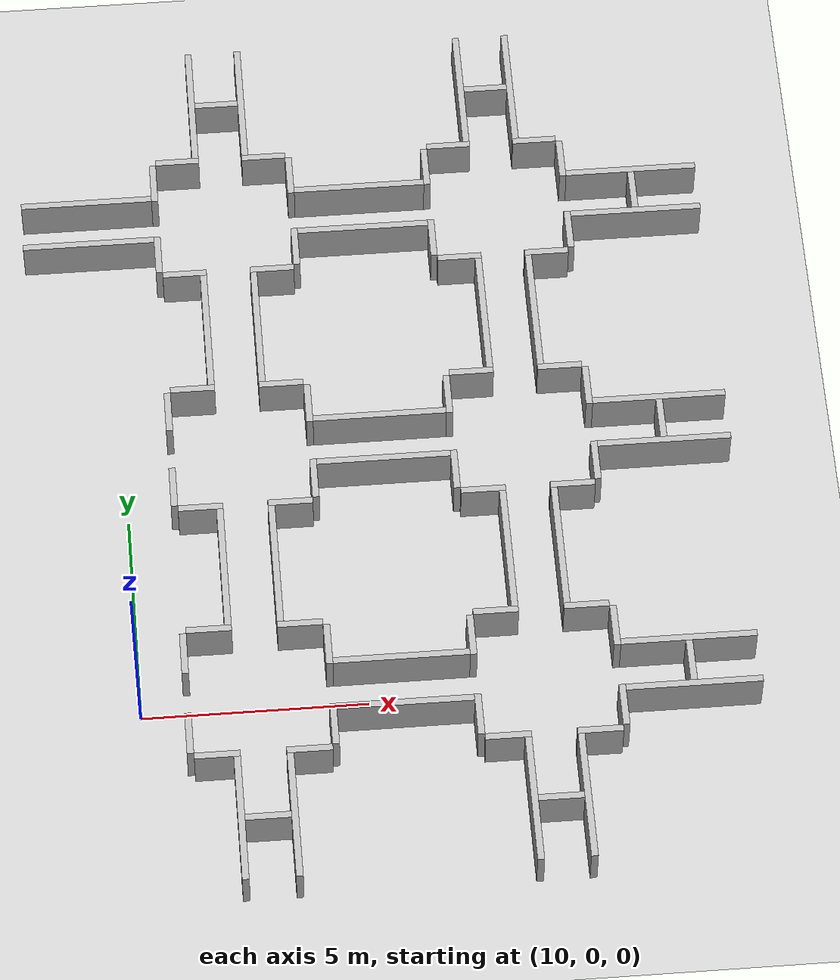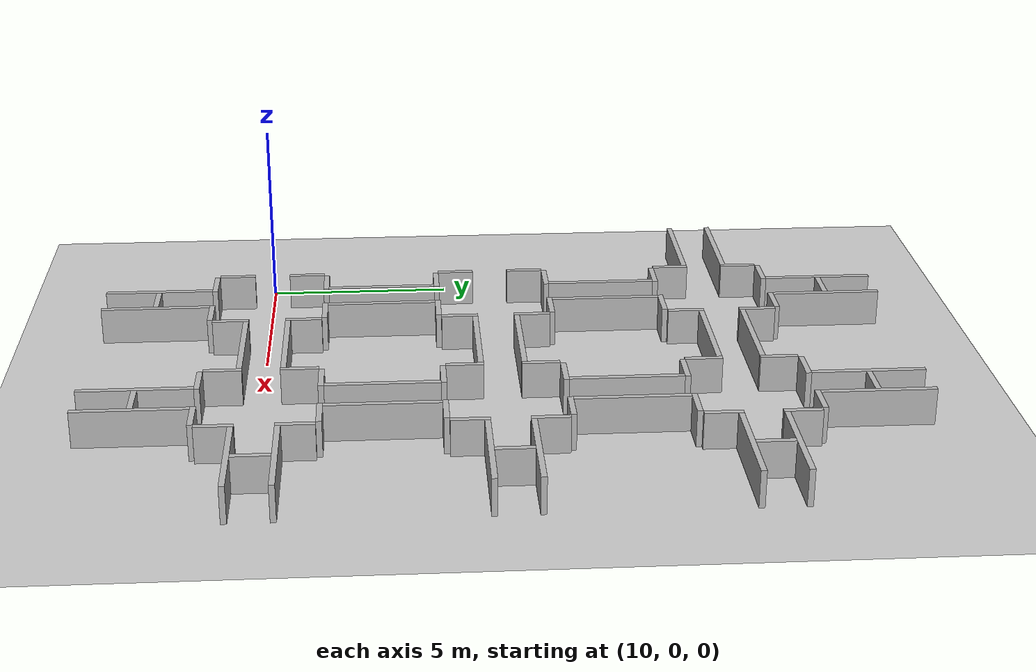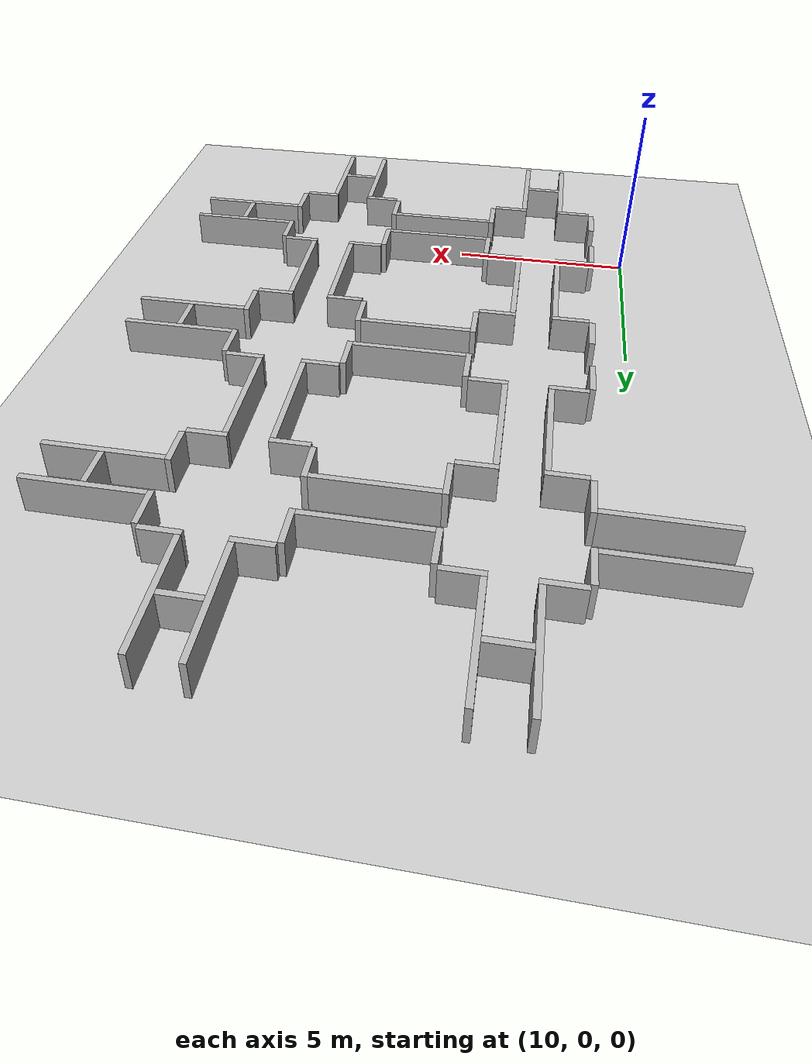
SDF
<sdf version="1.4">
 <world name="scenario 1">
  <include><uri>model://ground_plane</uri></include>
  <include><uri>model://sun</uri></include>
  <model name="roomWall_221">
   <pose>11.6 -1.575 0 0 0 0</pose>
   <static>true</static>
   <link name="box">
    <pose>0 0 0.5 0 0 1.5707963267948966</pose>
    <collision name="collision"><geometry><box><size>0.15 1 1</size></box></geometry></collision>
    <visual name="visual"><geometry><box><size>0.15 1 1</size></box></geometry></visual>
   </link>
  </model>
  <model name="roomWall_222">
   <pose>13.6 -1.575 0 0 0 0</pose>
   <static>true</static>
   <link name="box">
    <pose>0 0 0.5 0 0 1.5707963267948966</pose>
    <collision name="collision"><geometry><box><size>0.15 1 1</size></box></geometry></collision>
    <visual name="visual"><geometry><box><size>0.15 1 1</size></box></geometry></visual>
   </link>
  </model>
  <model name="roomWall_223">
   <pose>14.174999999999999 -1 0 0 0 0</pose>
   <static>true</static>
   <link name="box">
    <pose>0 0 0.5 0 0 0</pose>
    <collision name="collision"><geometry><box><size>0.15 1 1</size></box></geometry></collision>
    <visual name="visual"><geometry><box><size>0.15 1 1</size></box></geometry></visual>
   </link>
  </model>
  <model name="roomWall_224">
   <pose>14.174999999999999 1 0 0 0 0</pose>
   <static>true</static>
   <link name="box">
    <pose>0 0 0.5 0 0 0</pose>
    <collision name="collision"><geometry><box><size>0.15 1 1</size></box></geometry></collision>
    <visual name="visual"><geometry><box><size>0.15 1 1</size></box></geometry></visual>
   </link>
  </model>
  <model name="roomWall_225">
   <pose>13.6 1.575 0 0 0 0</pose>
   <static>true</static>
   <link name="box">
    <pose>0 0 0.5 0 0 1.5707963267948966</pose>
    <collision name="collision"><geometry><box><size>0.15 1 1</size></box></geometry></collision>
    <visual name="visual"><geometry><box><size>0.15 1 1</size></box></geometry></visual>
   </link>
  </model>
  <model name="roomWall_226">
   <pose>11.6 1.575 0 0 0 0</pose>
   <static>true</static>
   <link name="box">
    <pose>0 0 0.5 0 0 1.5707963267948966</pose>
    <collision name="collision"><geometry><box><size>0.15 1 1</size></box></geometry></collision>
    <visual name="visual"><geometry><box><size>0.15 1 1</size></box></geometry></visual>
   </link>
  </model>
  <model name="roomWall_227">
   <pose>11.025 1 0 0 0 0</pose>
   <static>true</static>
   <link name="box">
    <pose>0 0 0.5 0 0 0</pose>
    <collision name="collision"><geometry><box><size>0.15 1 1</size></box></geometry></collision>
    <visual name="visual"><geometry><box><size>0.15 1 1</size></box></geometry></visual>
   </link>
  </model>
  <model name="roomWall_228">
   <pose>11.025 -1 0 0 0 0</pose>
   <static>true</static>
   <link name="box">
    <pose>0 0 0.5 0 0 0</pose>
    <collision name="collision"><geometry><box><size>0.15 1 1</size></box></geometry></collision>
    <visual name="visual"><geometry><box><size>0.15 1 1</size></box></geometry></visual>
   </link>
  </model>
  <model name="roomWall_229">
   <pose>11.6 4.725 0 0 0 0</pose>
   <static>true</static>
   <link name="box">
    <pose>0 0 0.5 0 0 1.5707963267948966</pose>
    <collision name="collision"><geometry><box><size>0.15 1 1</size></box></geometry></collision>
    <visual name="visual"><geometry><box><size>0.15 1 1</size></box></geometry></visual>
   </link>
  </model>
  <model name="roomWall_230">
   <pose>13.6 4.725 0 0 0 0</pose>
   <static>true</static>
   <link name="box">
    <pose>0 0 0.5 0 0 1.5707963267948966</pose>
    <collision name="collision"><geometry><box><size>0.15 1 1</size></box></geometry></collision>
    <visual name="visual"><geometry><box><size>0.15 1 1</size></box></geometry></visual>
   </link>
  </model>
  <model name="roomWall_231">
   <pose>14.174999999999999 5.3 0 0 0 0</pose>
   <static>true</static>
   <link name="box">
    <pose>0 0 0.5 0 0 0</pose>
    <collision name="collision"><geometry><box><size>0.15 1 1</size></box></geometry></collision>
    <visual name="visual"><geometry><box><size>0.15 1 1</size></box></geometry></visual>
   </link>
  </model>
  <model name="roomWall_232">
   <pose>14.174999999999999 7.3 0 0 0 0</pose>
   <static>true</static>
   <link name="box">
    <pose>0 0 0.5 0 0 0</pose>
    <collision name="collision"><geometry><box><size>0.15 1 1</size></box></geometry></collision>
    <visual name="visual"><geometry><box><size>0.15 1 1</size></box></geometry></visual>
   </link>
  </model>
  <model name="roomWall_233">
   <pose>13.6 7.875 0 0 0 0</pose>
   <static>true</static>
   <link name="box">
    <pose>0 0 0.5 0 0 1.5707963267948966</pose>
    <collision name="collision"><geometry><box><size>0.15 1 1</size></box></geometry></collision>
    <visual name="visual"><geometry><box><size>0.15 1 1</size></box></geometry></visual>
   </link>
  </model>
  <model name="roomWall_234">
   <pose>11.6 7.875 0 0 0 0</pose>
   <static>true</static>
   <link name="box">
    <pose>0 0 0.5 0 0 1.5707963267948966</pose>
    <collision name="collision"><geometry><box><size>0.15 1 1</size></box></geometry></collision>
    <visual name="visual"><geometry><box><size>0.15 1 1</size></box></geometry></visual>
   </link>
  </model>
  <model name="roomWall_235">
   <pose>11.025 7.3 0 0 0 0</pose>
   <static>true</static>
   <link name="box">
    <pose>0 0 0.5 0 0 0</pose>
    <collision name="collision"><geometry><box><size>0.15 1 1</size></box></geometry></collision>
    <visual name="visual"><geometry><box><size>0.15 1 1</size></box></geometry></visual>
   </link>
  </model>
  <model name="roomWall_236">
   <pose>11.025 5.3 0 0 0 0</pose>
   <static>true</static>
   <link name="box">
    <pose>0 0 0.5 0 0 0</pose>
    <collision name="collision"><geometry><box><size>0.15 1 1</size></box></geometry></collision>
    <visual name="visual"><geometry><box><size>0.15 1 1</size></box></geometry></visual>
   </link>
  </model>
  <model name="roomWall_237">
   <pose>11.6 11.025 0 0 0 0</pose>
   <static>true</static>
   <link name="box">
    <pose>0 0 0.5 0 0 1.5707963267948966</pose>
    <collision name="collision"><geometry><box><size>0.15 1 1</size></box></geometry></collision>
    <visual name="visual"><geometry><box><size>0.15 1 1</size></box></geometry></visual>
   </link>
  </model>
  <model name="roomWall_238">
   <pose>13.6 11.025 0 0 0 0</pose>
   <static>true</static>
   <link name="box">
    <pose>0 0 0.5 0 0 1.5707963267948966</pose>
    <collision name="collision"><geometry><box><size>0.15 1 1</size></box></geometry></collision>
    <visual name="visual"><geometry><box><size>0.15 1 1</size></box></geometry></visual>
   </link>
  </model>
  <model name="roomWall_239">
   <pose>14.174999999999999 11.6 0 0 0 0</pose>
   <static>true</static>
   <link name="box">
    <pose>0 0 0.5 0 0 0</pose>
    <collision name="collision"><geometry><box><size>0.15 1 1</size></box></geometry></collision>
    <visual name="visual"><geometry><box><size>0.15 1 1</size></box></geometry></visual>
   </link>
  </model>
  <model name="roomWall_240">
   <pose>14.174999999999999 13.6 0 0 0 0</pose>
   <static>true</static>
   <link name="box">
    <pose>0 0 0.5 0 0 0</pose>
    <collision name="collision"><geometry><box><size>0.15 1 1</size></box></geometry></collision>
    <visual name="visual"><geometry><box><size>0.15 1 1</size></box></geometry></visual>
   </link>
  </model>
  <model name="roomWall_241">
   <pose>13.6 14.174999999999999 0 0 0 0</pose>
   <static>true</static>
   <link name="box">
    <pose>0 0 0.5 0 0 1.5707963267948966</pose>
    <collision name="collision"><geometry><box><size>0.15 1 1</size></box></geometry></collision>
    <visual name="visual"><geometry><box><size>0.15 1 1</size></box></geometry></visual>
   </link>
  </model>
  <model name="roomWall_242">
   <pose>11.6 14.174999999999999 0 0 0 0</pose>
   <static>true</static>
   <link name="box">
    <pose>0 0 0.5 0 0 1.5707963267948966</pose>
    <collision name="collision"><geometry><box><size>0.15 1 1</size></box></geometry></collision>
    <visual name="visual"><geometry><box><size>0.15 1 1</size></box></geometry></visual>
   </link>
  </model>
  <model name="roomWall_243">
   <pose>11.025 13.6 0 0 0 0</pose>
   <static>true</static>
   <link name="box">
    <pose>0 0 0.5 0 0 0</pose>
    <collision name="collision"><geometry><box><size>0.15 1 1</size></box></geometry></collision>
    <visual name="visual"><geometry><box><size>0.15 1 1</size></box></geometry></visual>
   </link>
  </model>
  <model name="roomWall_244">
   <pose>11.025 11.6 0 0 0 0</pose>
   <static>true</static>
   <link name="box">
    <pose>0 0 0.5 0 0 0</pose>
    <collision name="collision"><geometry><box><size>0.15 1 1</size></box></geometry></collision>
    <visual name="visual"><geometry><box><size>0.15 1 1</size></box></geometry></visual>
   </link>
  </model>
  <model name="roomWall_245">
   <pose>17.9 -1.575 0 0 0 0</pose>
   <static>true</static>
   <link name="box">
    <pose>0 0 0.5 0 0 1.5707963267948966</pose>
    <collision name="collision"><geometry><box><size>0.15 1 1</size></box></geometry></collision>
    <visual name="visual"><geometry><box><size>0.15 1 1</size></box></geometry></visual>
   </link>
  </model>
  <model name="roomWall_246">
   <pose>19.9 -1.575 0 0 0 0</pose>
   <static>true</static>
   <link name="box">
    <pose>0 0 0.5 0 0 1.5707963267948966</pose>
    <collision name="collision"><geometry><box><size>0.15 1 1</size></box></geometry></collision>
    <visual name="visual"><geometry><box><size>0.15 1 1</size></box></geometry></visual>
   </link>
  </model>
  <model name="roomWall_247">
   <pose>20.474999999999998 -1 0 0 0 0</pose>
   <static>true</static>
   <link name="box">
    <pose>0 0 0.5 0 0 0</pose>
    <collision name="collision"><geometry><box><size>0.15 1 1</size></box></geometry></collision>
    <visual name="visual"><geometry><box><size>0.15 1 1</size></box></geometry></visual>
   </link>
  </model>
  <model name="roomWall_248">
   <pose>20.474999999999998 1 0 0 0 0</pose>
   <static>true</static>
   <link name="box">
    <pose>0 0 0.5 0 0 0</pose>
    <collision name="collision"><geometry><box><size>0.15 1 1</size></box></geometry></collision>
    <visual name="visual"><geometry><box><size>0.15 1 1</size></box></geometry></visual>
   </link>
  </model>
  <model name="roomWall_249">
   <pose>19.9 1.575 0 0 0 0</pose>
   <static>true</static>
   <link name="box">
    <pose>0 0 0.5 0 0 1.5707963267948966</pose>
    <collision name="collision"><geometry><box><size>0.15 1 1</size></box></geometry></collision>
    <visual name="visual"><geometry><box><size>0.15 1 1</size></box></geometry></visual>
   </link>
  </model>
  <model name="roomWall_250">
   <pose>17.9 1.575 0 0 0 0</pose>
   <static>true</static>
   <link name="box">
    <pose>0 0 0.5 0 0 1.5707963267948966</pose>
    <collision name="collision"><geometry><box><size>0.15 1 1</size></box></geometry></collision>
    <visual name="visual"><geometry><box><size>0.15 1 1</size></box></geometry></visual>
   </link>
  </model>
  <model name="roomWall_251">
   <pose>17.325 1 0 0 0 0</pose>
   <static>true</static>
   <link name="box">
    <pose>0 0 0.5 0 0 0</pose>
    <collision name="collision"><geometry><box><size>0.15 1 1</size></box></geometry></collision>
    <visual name="visual"><geometry><box><size>0.15 1 1</size></box></geometry></visual>
   </link>
  </model>
  <model name="roomWall_252">
   <pose>17.325 -1 0 0 0 0</pose>
   <static>true</static>
   <link name="box">
    <pose>0 0 0.5 0 0 0</pose>
    <collision name="collision"><geometry><box><size>0.15 1 1</size></box></geometry></collision>
    <visual name="visual"><geometry><box><size>0.15 1 1</size></box></geometry></visual>
   </link>
  </model>
  <model name="roomWall_253">
   <pose>17.9 4.725 0 0 0 0</pose>
   <static>true</static>
   <link name="box">
    <pose>0 0 0.5 0 0 1.5707963267948966</pose>
    <collision name="collision"><geometry><box><size>0.15 1 1</size></box></geometry></collision>
    <visual name="visual"><geometry><box><size>0.15 1 1</size></box></geometry></visual>
   </link>
  </model>
  <model name="roomWall_254">
   <pose>19.9 4.725 0 0 0 0</pose>
   <static>true</static>
   <link name="box">
    <pose>0 0 0.5 0 0 1.5707963267948966</pose>
    <collision name="collision"><geometry><box><size>0.15 1 1</size></box></geometry></collision>
    <visual name="visual"><geometry><box><size>0.15 1 1</size></box></geometry></visual>
   </link>
  </model>
  <model name="roomWall_255">
   <pose>20.474999999999998 5.3 0 0 0 0</pose>
   <static>true</static>
   <link name="box">
    <pose>0 0 0.5 0 0 0</pose>
    <collision name="collision"><geometry><box><size>0.15 1 1</size></box></geometry></collision>
    <visual name="visual"><geometry><box><size>0.15 1 1</size></box></geometry></visual>
   </link>
  </model>
  <model name="roomWall_256">
   <pose>20.474999999999998 7.3 0 0 0 0</pose>
   <static>true</static>
   <link name="box">
    <pose>0 0 0.5 0 0 0</pose>
    <collision name="collision"><geometry><box><size>0.15 1 1</size></box></geometry></collision>
    <visual name="visual"><geometry><box><size>0.15 1 1</size></box></geometry></visual>
   </link>
  </model>
  <model name="roomWall_257">
   <pose>19.9 7.875 0 0 0 0</pose>
   <static>true</static>
   <link name="box">
    <pose>0 0 0.5 0 0 1.5707963267948966</pose>
    <collision name="collision"><geometry><box><size>0.15 1 1</size></box></geometry></collision>
    <visual name="visual"><geometry><box><size>0.15 1 1</size></box></geometry></visual>
   </link>
  </model>
  <model name="roomWall_258">
   <pose>17.9 7.875 0 0 0 0</pose>
   <static>true</static>
   <link name="box">
    <pose>0 0 0.5 0 0 1.5707963267948966</pose>
    <collision name="collision"><geometry><box><size>0.15 1 1</size></box></geometry></collision>
    <visual name="visual"><geometry><box><size>0.15 1 1</size></box></geometry></visual>
   </link>
  </model>
  <model name="roomWall_259">
   <pose>17.325 7.3 0 0 0 0</pose>
   <static>true</static>
   <link name="box">
    <pose>0 0 0.5 0 0 0</pose>
    <collision name="collision"><geometry><box><size>0.15 1 1</size></box></geometry></collision>
    <visual name="visual"><geometry><box><size>0.15 1 1</size></box></geometry></visual>
   </link>
  </model>
  <model name="roomWall_260">
   <pose>17.325 5.3 0 0 0 0</pose>
   <static>true</static>
   <link name="box">
    <pose>0 0 0.5 0 0 0</pose>
    <collision name="collision"><geometry><box><size>0.15 1 1</size></box></geometry></collision>
    <visual name="visual"><geometry><box><size>0.15 1 1</size></box></geometry></visual>
   </link>
  </model>
  <model name="roomWall_261">
   <pose>17.9 11.025 0 0 0 0</pose>
   <static>true</static>
   <link name="box">
    <pose>0 0 0.5 0 0 1.5707963267948966</pose>
    <collision name="collision"><geometry><box><size>0.15 1 1</size></box></geometry></collision>
    <visual name="visual"><geometry><box><size>0.15 1 1</size></box></geometry></visual>
   </link>
  </model>
  <model name="roomWall_262">
   <pose>19.9 11.025 0 0 0 0</pose>
   <static>true</static>
   <link name="box">
    <pose>0 0 0.5 0 0 1.5707963267948966</pose>
    <collision name="collision"><geometry><box><size>0.15 1 1</size></box></geometry></collision>
    <visual name="visual"><geometry><box><size>0.15 1 1</size></box></geometry></visual>
   </link>
  </model>
  <model name="roomWall_263">
   <pose>20.474999999999998 11.6 0 0 0 0</pose>
   <static>true</static>
   <link name="box">
    <pose>0 0 0.5 0 0 0</pose>
    <collision name="collision"><geometry><box><size>0.15 1 1</size></box></geometry></collision>
    <visual name="visual"><geometry><box><size>0.15 1 1</size></box></geometry></visual>
   </link>
  </model>
  <model name="roomWall_264">
   <pose>20.474999999999998 13.6 0 0 0 0</pose>
   <static>true</static>
   <link name="box">
    <pose>0 0 0.5 0 0 0</pose>
    <collision name="collision"><geometry><box><size>0.15 1 1</size></box></geometry></collision>
    <visual name="visual"><geometry><box><size>0.15 1 1</size></box></geometry></visual>
   </link>
  </model>
  <model name="roomWall_265">
   <pose>19.9 14.174999999999999 0 0 0 0</pose>
   <static>true</static>
   <link name="box">
    <pose>0 0 0.5 0 0 1.5707963267948966</pose>
    <collision name="collision"><geometry><box><size>0.15 1 1</size></box></geometry></collision>
    <visual name="visual"><geometry><box><size>0.15 1 1</size></box></geometry></visual>
   </link>
  </model>
  <model name="roomWall_266">
   <pose>17.9 14.174999999999999 0 0 0 0</pose>
   <static>true</static>
   <link name="box">
    <pose>0 0 0.5 0 0 1.5707963267948966</pose>
    <collision name="collision"><geometry><box><size>0.15 1 1</size></box></geometry></collision>
    <visual name="visual"><geometry><box><size>0.15 1 1</size></box></geometry></visual>
   </link>
  </model>
  <model name="roomWall_267">
   <pose>17.325 13.6 0 0 0 0</pose>
   <static>true</static>
   <link name="box">
    <pose>0 0 0.5 0 0 0</pose>
    <collision name="collision"><geometry><box><size>0.15 1 1</size></box></geometry></collision>
    <visual name="visual"><geometry><box><size>0.15 1 1</size></box></geometry></visual>
   </link>
  </model>
  <model name="roomWall_268">
   <pose>17.325 11.6 0 0 0 0</pose>
   <static>true</static>
   <link name="box">
    <pose>0 0 0.5 0 0 0</pose>
    <collision name="collision"><geometry><box><size>0.15 1 1</size></box></geometry></collision>
    <visual name="visual"><geometry><box><size>0.15 1 1</size></box></geometry></visual>
   </link>
  </model>
  <model name="pathWayWall_299">
   <pose>9.45 12.025 0 0 0 0</pose>
   <static>true</static>
   <link name="box">
    <pose>0 0 0.5 0 0 1.5707963267948966</pose>
    <collision name="collision"><geometry><box><size>0.15 3 1</size></box></geometry></collision>
    <visual name="visual"><geometry><box><size>0.15 3 1</size></box></geometry></visual>
   </link>
  </model>
  <model name="pathWayWall_300">
   <pose>9.45 13.174999999999999 0 0 0 0</pose>
   <static>true</static>
   <link name="box">
    <pose>0 0 0.5 0 0 1.5707963267948966</pose>
    <collision name="collision"><geometry><box><size>0.15 3 1</size></box></geometry></collision>
    <visual name="visual"><geometry><box><size>0.15 3 1</size></box></geometry></visual>
   </link>
  </model>
  <model name="pathWayWall_303">
   <pose>15.75 -0.575 0 0 0 0</pose>
   <static>true</static>
   <link name="box">
    <pose>0 0 0.5 0 0 1.5707963267948966</pose>
    <collision name="collision"><geometry><box><size>0.15 3 1</size></box></geometry></collision>
    <visual name="visual"><geometry><box><size>0.15 3 1</size></box></geometry></visual>
   </link>
  </model>
  <model name="pathWayWall_304">
   <pose>15.75 0.575 0 0 0 0</pose>
   <static>true</static>
   <link name="box">
    <pose>0 0 0.5 0 0 1.5707963267948966</pose>
    <collision name="collision"><geometry><box><size>0.15 3 1</size></box></geometry></collision>
    <visual name="visual"><geometry><box><size>0.15 3 1</size></box></geometry></visual>
   </link>
  </model>
  <model name="pathWayWall_305">
   <pose>13.174999999999999 3.15 0 0 0 0</pose>
   <static>true</static>
   <link name="box">
    <pose>0 0 0.5 0 0 0</pose>
    <collision name="collision"><geometry><box><size>0.15 3 1</size></box></geometry></collision>
    <visual name="visual"><geometry><box><size>0.15 3 1</size></box></geometry></visual>
   </link>
  </model>
  <model name="pathWayWall_306">
   <pose>12.025 3.15 0 0 0 0</pose>
   <static>true</static>
   <link name="box">
    <pose>0 0 0.5 0 0 0</pose>
    <collision name="collision"><geometry><box><size>0.15 3 1</size></box></geometry></collision>
    <visual name="visual"><geometry><box><size>0.15 3 1</size></box></geometry></visual>
   </link>
  </model>
  <model name="pathWayWall_307">
   <pose>12.025 -3.15 0 0 0 0</pose>
   <static>true</static>
   <link name="box">
    <pose>0 0 0.5 0 0 0</pose>
    <collision name="collision"><geometry><box><size>0.15 3 1</size></box></geometry></collision>
    <visual name="visual"><geometry><box><size>0.15 3 1</size></box></geometry></visual>
   </link>
  </model>
  <model name="pathWayWall_308">
   <pose>13.174999999999999 -3.15 0 0 0 0</pose>
   <static>true</static>
   <link name="box">
    <pose>0 0 0.5 0 0 0</pose>
    <collision name="collision"><geometry><box><size>0.15 3 1</size></box></geometry></collision>
    <visual name="visual"><geometry><box><size>0.15 3 1</size></box></geometry></visual>
   </link>
  </model>
  <model name="pathWayWall_309">
   <pose>15.75 5.725 0 0 0 0</pose>
   <static>true</static>
   <link name="box">
    <pose>0 0 0.5 0 0 1.5707963267948966</pose>
    <collision name="collision"><geometry><box><size>0.15 3 1</size></box></geometry></collision>
    <visual name="visual"><geometry><box><size>0.15 3 1</size></box></geometry></visual>
   </link>
  </model>
  <model name="pathWayWall_310">
   <pose>15.75 6.875 0 0 0 0</pose>
   <static>true</static>
   <link name="box">
    <pose>0 0 0.5 0 0 1.5707963267948966</pose>
    <collision name="collision"><geometry><box><size>0.15 3 1</size></box></geometry></collision>
    <visual name="visual"><geometry><box><size>0.15 3 1</size></box></geometry></visual>
   </link>
  </model>
  <model name="pathWayWall_311">
   <pose>13.174999999999999 9.45 0 0 0 0</pose>
   <static>true</static>
   <link name="box">
    <pose>0 0 0.5 0 0 0</pose>
    <collision name="collision"><geometry><box><size>0.15 3 1</size></box></geometry></collision>
    <visual name="visual"><geometry><box><size>0.15 3 1</size></box></geometry></visual>
   </link>
  </model>
  <model name="pathWayWall_312">
   <pose>12.025 9.45 0 0 0 0</pose>
   <static>true</static>
   <link name="box">
    <pose>0 0 0.5 0 0 0</pose>
    <collision name="collision"><geometry><box><size>0.15 3 1</size></box></geometry></collision>
    <visual name="visual"><geometry><box><size>0.15 3 1</size></box></geometry></visual>
   </link>
  </model>
  <model name="pathWayWall_313">
   <pose>15.75 12.025 0 0 0 0</pose>
   <static>true</static>
   <link name="box">
    <pose>0 0 0.5 0 0 1.5707963267948966</pose>
    <collision name="collision"><geometry><box><size>0.15 3 1</size></box></geometry></collision>
    <visual name="visual"><geometry><box><size>0.15 3 1</size></box></geometry></visual>
   </link>
  </model>
  <model name="pathWayWall_314">
   <pose>15.75 13.174999999999999 0 0 0 0</pose>
   <static>true</static>
   <link name="box">
    <pose>0 0 0.5 0 0 1.5707963267948966</pose>
    <collision name="collision"><geometry><box><size>0.15 3 1</size></box></geometry></collision>
    <visual name="visual"><geometry><box><size>0.15 3 1</size></box></geometry></visual>
   </link>
  </model>
  <model name="pathWayWall_315">
   <pose>13.174999999999999 15.75 0 0 0 0</pose>
   <static>true</static>
   <link name="box">
    <pose>0 0 0.5 0 0 0</pose>
    <collision name="collision"><geometry><box><size>0.15 3 1</size></box></geometry></collision>
    <visual name="visual"><geometry><box><size>0.15 3 1</size></box></geometry></visual>
   </link>
  </model>
  <model name="pathWayWall_316">
   <pose>12.025 15.75 0 0 0 0</pose>
   <static>true</static>
   <link name="box">
    <pose>0 0 0.5 0 0 0</pose>
    <collision name="collision"><geometry><box><size>0.15 3 1</size></box></geometry></collision>
    <visual name="visual"><geometry><box><size>0.15 3 1</size></box></geometry></visual>
   </link>
  </model>
  <model name="pathWayWall_317">
   <pose>22.049999999999997 -0.575 0 0 0 0</pose>
   <static>true</static>
   <link name="box">
    <pose>0 0 0.5 0 0 1.5707963267948966</pose>
    <collision name="collision"><geometry><box><size>0.15 3 1</size></box></geometry></collision>
    <visual name="visual"><geometry><box><size>0.15 3 1</size></box></geometry></visual>
   </link>
  </model>
  <model name="pathWayWall_318">
   <pose>22.049999999999997 0.575 0 0 0 0</pose>
   <static>true</static>
   <link name="box">
    <pose>0 0 0.5 0 0 1.5707963267948966</pose>
    <collision name="collision"><geometry><box><size>0.15 3 1</size></box></geometry></collision>
    <visual name="visual"><geometry><box><size>0.15 3 1</size></box></geometry></visual>
   </link>
  </model>
  <model name="pathWayWall_319">
   <pose>19.474999999999998 3.15 0 0 0 0</pose>
   <static>true</static>
   <link name="box">
    <pose>0 0 0.5 0 0 0</pose>
    <collision name="collision"><geometry><box><size>0.15 3 1</size></box></geometry></collision>
    <visual name="visual"><geometry><box><size>0.15 3 1</size></box></geometry></visual>
   </link>
  </model>
  <model name="pathWayWall_320">
   <pose>18.325 3.15 0 0 0 0</pose>
   <static>true</static>
   <link name="box">
    <pose>0 0 0.5 0 0 0</pose>
    <collision name="collision"><geometry><box><size>0.15 3 1</size></box></geometry></collision>
    <visual name="visual"><geometry><box><size>0.15 3 1</size></box></geometry></visual>
   </link>
  </model>
  <model name="pathWayWall_321">
   <pose>18.325 -3.15 0 0 0 0</pose>
   <static>true</static>
   <link name="box">
    <pose>0 0 0.5 0 0 0</pose>
    <collision name="collision"><geometry><box><size>0.15 3 1</size></box></geometry></collision>
    <visual name="visual"><geometry><box><size>0.15 3 1</size></box></geometry></visual>
   </link>
  </model>
  <model name="pathWayWall_322">
   <pose>19.474999999999998 -3.15 0 0 0 0</pose>
   <static>true</static>
   <link name="box">
    <pose>0 0 0.5 0 0 0</pose>
    <collision name="collision"><geometry><box><size>0.15 3 1</size></box></geometry></collision>
    <visual name="visual"><geometry><box><size>0.15 3 1</size></box></geometry></visual>
   </link>
  </model>
  <model name="pathWayWall_323">
   <pose>22.049999999999997 5.725 0 0 0 0</pose>
   <static>true</static>
   <link name="box">
    <pose>0 0 0.5 0 0 1.5707963267948966</pose>
    <collision name="collision"><geometry><box><size>0.15 3 1</size></box></geometry></collision>
    <visual name="visual"><geometry><box><size>0.15 3 1</size></box></geometry></visual>
   </link>
  </model>
  <model name="pathWayWall_324">
   <pose>22.049999999999997 6.875 0 0 0 0</pose>
   <static>true</static>
   <link name="box">
    <pose>0 0 0.5 0 0 1.5707963267948966</pose>
    <collision name="collision"><geometry><box><size>0.15 3 1</size></box></geometry></collision>
    <visual name="visual"><geometry><box><size>0.15 3 1</size></box></geometry></visual>
   </link>
  </model>
  <model name="pathWayWall_325">
   <pose>19.474999999999998 9.45 0 0 0 0</pose>
   <static>true</static>
   <link name="box">
    <pose>0 0 0.5 0 0 0</pose>
    <collision name="collision"><geometry><box><size>0.15 3 1</size></box></geometry></collision>
    <visual name="visual"><geometry><box><size>0.15 3 1</size></box></geometry></visual>
   </link>
  </model>
  <model name="pathWayWall_326">
   <pose>18.325 9.45 0 0 0 0</pose>
   <static>true</static>
   <link name="box">
    <pose>0 0 0.5 0 0 0</pose>
    <collision name="collision"><geometry><box><size>0.15 3 1</size></box></geometry></collision>
    <visual name="visual"><geometry><box><size>0.15 3 1</size></box></geometry></visual>
   </link>
  </model>
  <model name="pathWayWall_327">
   <pose>22.049999999999997 12.025 0 0 0 0</pose>
   <static>true</static>
   <link name="box">
    <pose>0 0 0.5 0 0 1.5707963267948966</pose>
    <collision name="collision"><geometry><box><size>0.15 3 1</size></box></geometry></collision>
    <visual name="visual"><geometry><box><size>0.15 3 1</size></box></geometry></visual>
   </link>
  </model>
  <model name="pathWayWall_328">
   <pose>22.049999999999997 13.174999999999999 0 0 0 0</pose>
   <static>true</static>
   <link name="box">
    <pose>0 0 0.5 0 0 1.5707963267948966</pose>
    <collision name="collision"><geometry><box><size>0.15 3 1</size></box></geometry></collision>
    <visual name="visual"><geometry><box><size>0.15 3 1</size></box></geometry></visual>
   </link>
  </model>
  <model name="pathWayWall_329">
   <pose>19.474999999999998 15.75 0 0 0 0</pose>
   <static>true</static>
   <link name="box">
    <pose>0 0 0.5 0 0 0</pose>
    <collision name="collision"><geometry><box><size>0.15 3 1</size></box></geometry></collision>
    <visual name="visual"><geometry><box><size>0.15 3 1</size></box></geometry></visual>
   </link>
  </model>
  <model name="pathWayWall_330">
   <pose>18.325 15.75 0 0 0 0</pose>
   <static>true</static>
   <link name="box">
    <pose>0 0 0.5 0 0 0</pose>
    <collision name="collision"><geometry><box><size>0.15 3 1</size></box></geometry></collision>
    <visual name="visual"><geometry><box><size>0.15 3 1</size></box></geometry></visual>
   </link>
  </model>
  <model name="blockingWall_338">
   <pose>12.6 -3.15 0 0 0 0</pose>
   <static>true</static>
   <link name="box">
    <pose>0 0 0.5 0 0 1.5707963267948966</pose>
    <collision name="collision"><geometry><box><size>0.15 1 1</size></box></geometry></collision>
    <visual name="visual"><geometry><box><size>0.15 1 1</size></box></geometry></visual>
   </link>
  </model>
  <model name="blockingWall_339">
   <pose>12.6 15.75 0 0 0 0</pose>
   <static>true</static>
   <link name="box">
    <pose>0 0 0.5 0 0 1.5707963267948966</pose>
    <collision name="collision"><geometry><box><size>0.15 1 1</size></box></geometry></collision>
    <visual name="visual"><geometry><box><size>0.15 1 1</size></box></geometry></visual>
   </link>
  </model>
  <model name="blockingWall_340">
   <pose>18.9 -3.15 0 0 0 0</pose>
   <static>true</static>
   <link name="box">
    <pose>0 0 0.5 0 0 1.5707963267948966</pose>
    <collision name="collision"><geometry><box><size>0.15 1 1</size></box></geometry></collision>
    <visual name="visual"><geometry><box><size>0.15 1 1</size></box></geometry></visual>
   </link>
  </model>
  <model name="blockingWall_341">
   <pose>22.049999999999997 0 0 0 0 0</pose>
   <static>true</static>
   <link name="box">
    <pose>0 0 0.5 0 0 0</pose>
    <collision name="collision"><geometry><box><size>0.15 1 1</size></box></geometry></collision>
    <visual name="visual"><geometry><box><size>0.15 1 1</size></box></geometry></visual>
   </link>
  </model>
  <model name="blockingWall_342">
   <pose>22.049999999999997 6.3 0 0 0 0</pose>
   <static>true</static>
   <link name="box">
    <pose>0 0 0.5 0 0 0</pose>
    <collision name="collision"><geometry><box><size>0.15 1 1</size></box></geometry></collision>
    <visual name="visual"><geometry><box><size>0.15 1 1</size></box></geometry></visual>
   </link>
  </model>
  <model name="blockingWall_343">
   <pose>22.049999999999997 12.6 0 0 0 0</pose>
   <static>true</static>
   <link name="box">
    <pose>0 0 0.5 0 0 0</pose>
    <collision name="collision"><geometry><box><size>0.15 1 1</size></box></geometry></collision>
    <visual name="visual"><geometry><box><size>0.15 1 1</size></box></geometry></visual>
   </link>
  </model>
  <model name="blockingWall_344">
   <pose>18.9 15.75 0 0 0 0</pose>
   <static>true</static>
   <link name="box">
    <pose>0 0 0.5 0 0 1.5707963267948966</pose>
    <collision name="collision"><geometry><box><size>0.15 1 1</size></box></geometry></collision>
    <visual name="visual"><geometry><box><size>0.15 1 1</size></box></geometry></visual>
   </link>
  </model>
 </world>
</sdf>
